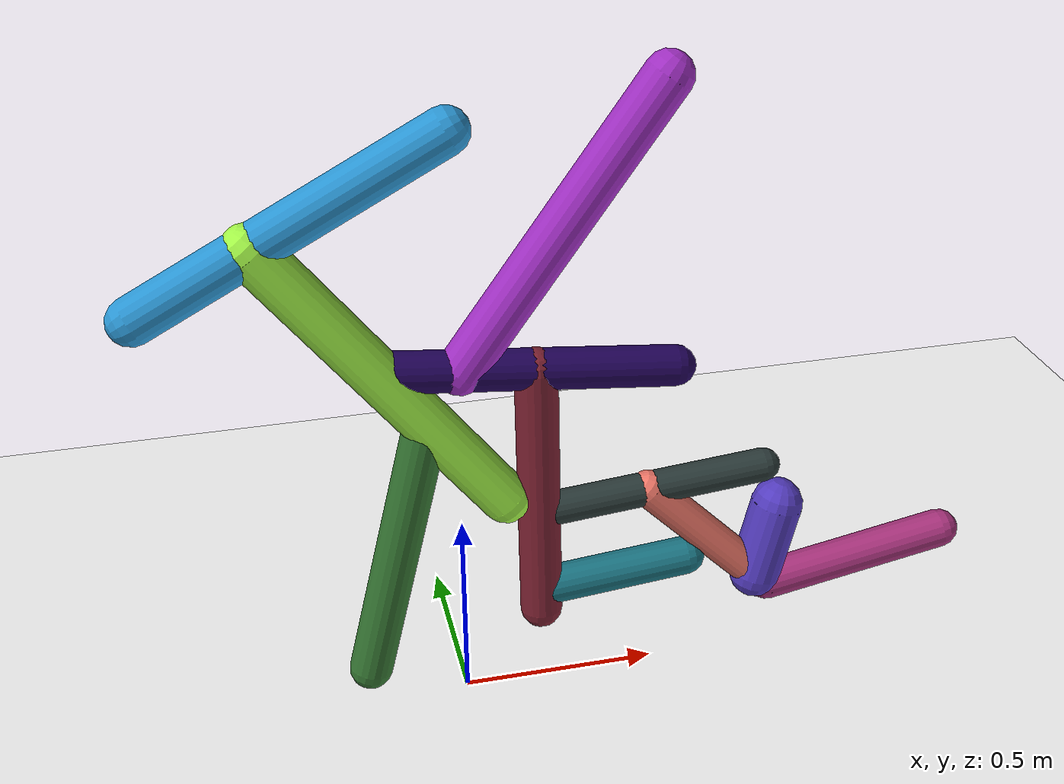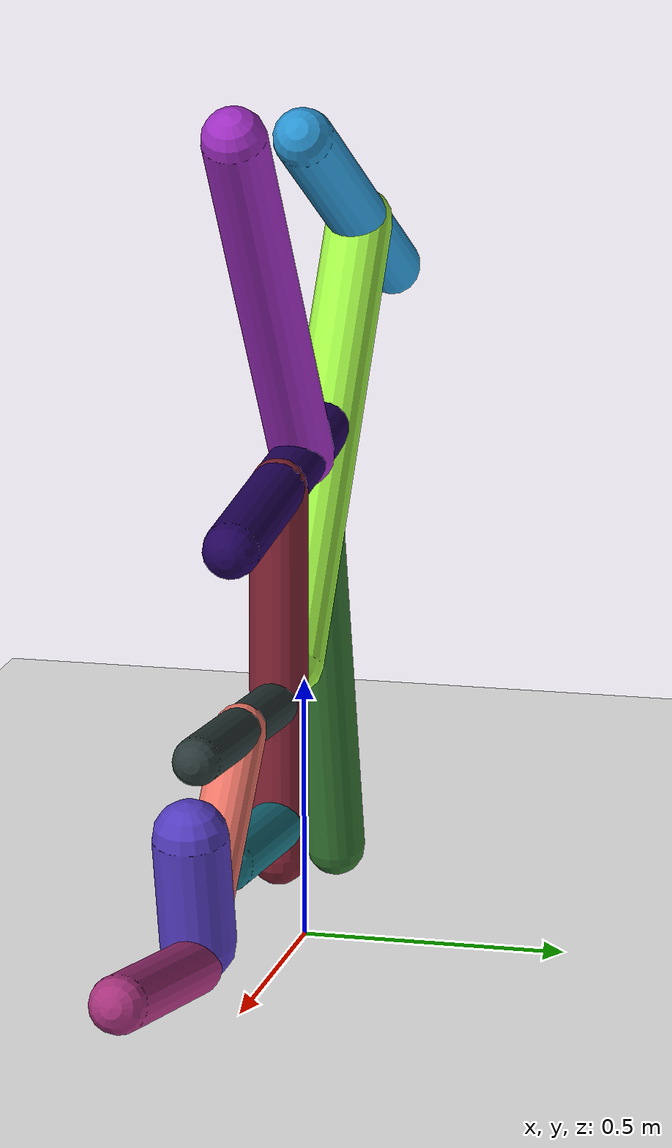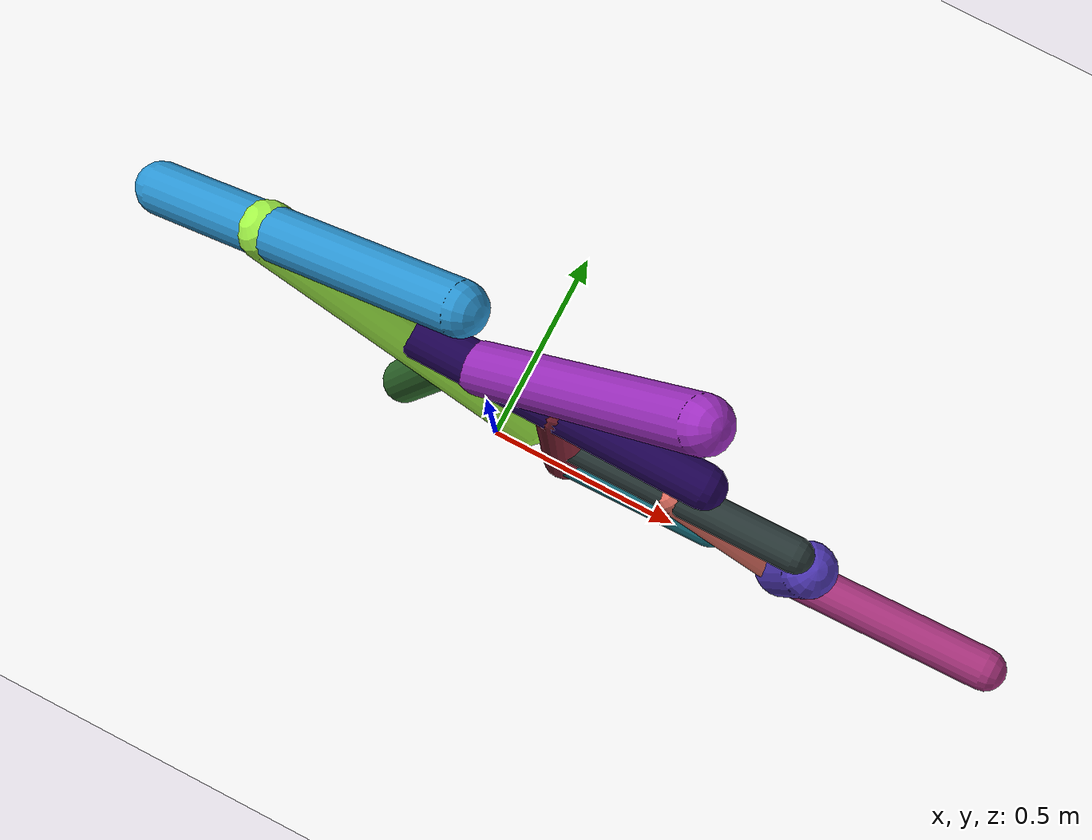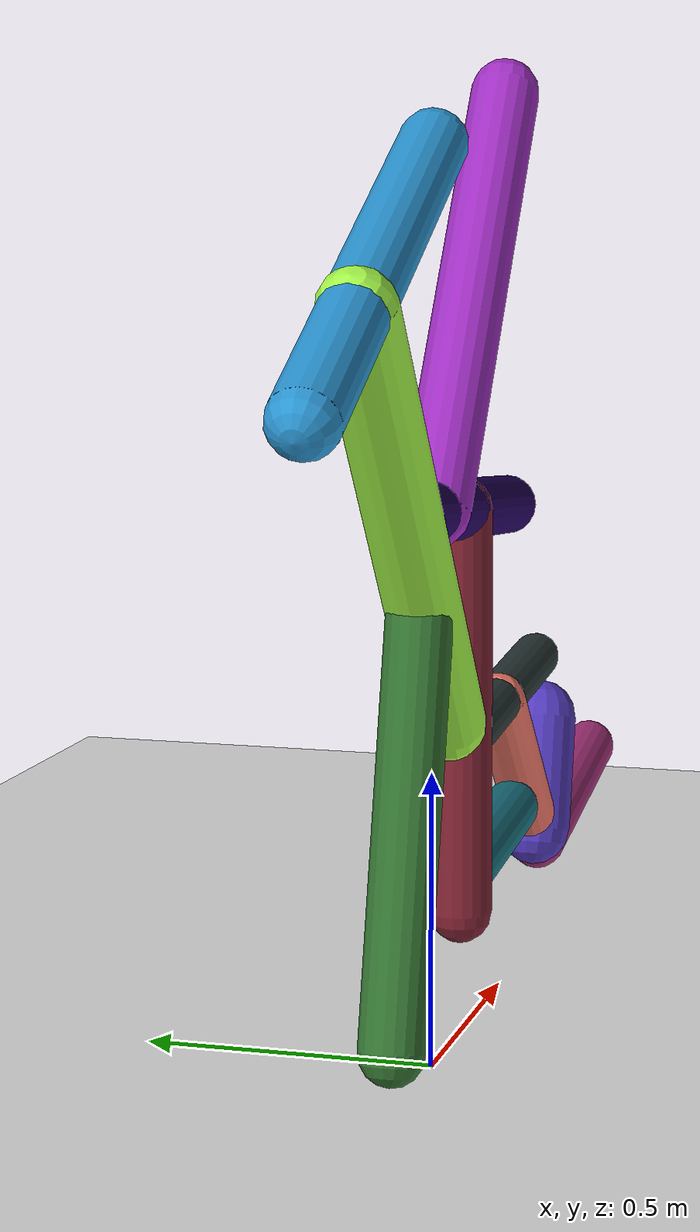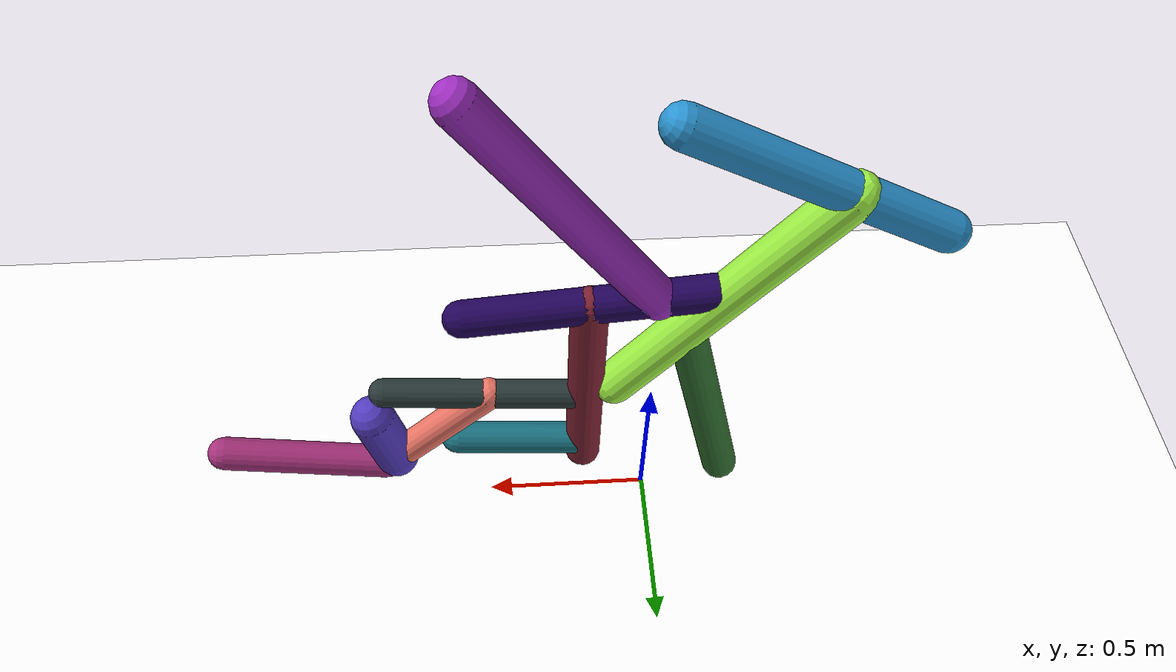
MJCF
<mujoco model="morphology">
  <option timestep="0.01"/>
  <default>
    <default class="/"/>
    <default class="0/"/>
    <default class="0/1/"/>
    <default class="0/1/2/"/>
    <default class="0/1/2/3/"/>
    <default class="0/1/2/4/"/>
    <default class="0/1/2/4/5/"/>
    <default class="0/1/2/4/6/"/>
    <default class="0/1/2/4/6/7/"/>
    <default class="0/1/2/4/6/7/8/"/>
    <default class="0/1/2/4/6/7/9/"/>
    <default class="0/1/10/"/>
  </default>
  <asset>
    <texture name="texplane" type="2d" builtin="checker" rgb1="0.10000000000000001 0.20000000000000001 0.29999999999999999" rgb2="0.20000000000000001 0.29999999999999999 0.40000000000000002" width="300" height="300"/>
    <material name="MatPlane" class="/" texture="texplane" texrepeat="20 20" specular="1" shininess="1" reflectance="0.5"/>
  </asset>
  <worldbody>
    <light name="//unnamed_light_0" class="/" directional="true" pos="0 0 1.5" dir="0 0 -1.3" cutoff="100" exponent="1" diffuse="1 1 1" specular="0.10000000000000001 0.10000000000000001 0.10000000000000001"/>
    <geom name="ground" class="/" type="plane" size="15 15 0.5" material="MatPlane" rgba="1 1 1 1"/>
    <site name="body" class="/" size="9.9999999999999995e-07 9.9999999999999995e-07 9.9999999999999995e-07" pos="0 0 1.5300401210784913"/>
    <body pos="0 0 1.5300401210784913" name="0/">
      <joint name="0/rootx/" class="/" type="slide" axis="1 0 0" limited="false" stiffness="0" armature="0" damping="0"/>
      <joint name="0/rootz/" class="/" type="slide" axis="0 0 1" limited="false" stiffness="0" armature="0" damping="0"/>
      <joint name="0/rooty/" class="/" type="hinge" axis="0 1 0" limited="false" stiffness="0" armature="0" damping="0"/>
      <geom name="0/geom" class="0/" type="capsule" contype="1" conaffinity="1" condim="3" size="0.057316337935166911" rgba="0.16601490198592128 0.58552024719703633 0.82671762298615925 1" friction="0.59999999999999998 0.10000000000000001 0.10000000000000001" fromto="0 0 0 -0.71993491554773659 0 -0.38075990136930665"/>
      <site name="0/end0" class="0/" size="0.0050000000000000001" pos="-0.71993491554773659 0 -0.38075990136930665"/>
      <site name="0/attach1" class="0/" size="9.9999999999999995e-07 9.9999999999999995e-07 9.9999999999999995e-07" pos="-0.45030785260041811 0 -0.23815926945494917"/>
      <body pos="-0.45030785260041811 0 -0.23815926945494917" name="0/1/">
        <joint name="0/1/joint/" class="0/" type="hinge" axis="0 1 0" limited="true" range="-53.354050288664567 53.354050288664567"/>
        <geom name="0/1/geom" class="0/1/" type="capsule" contype="1" conaffinity="1" condim="3" size="0.063629963072306339" rgba="0.63803736303354819 0.96229547335382071 0.27660666599015082 1" friction="0.59999999999999998 0.10000000000000001 0.10000000000000001" fromto="0 0 0 0.56477568606398076 0 -0.73017851075767837"/>
        <site name="0/1/end1" class="0/1/" size="0.0050000000000000001" pos="0.56477568606398076 0 -0.73017851075767837"/>
        <site name="0/1/attach2" class="0/1/" size="9.9999999999999995e-07 9.9999999999999995e-07 9.9999999999999995e-07" pos="0.26212219677319959 0 -0.33888851804201725"/>
        <body pos="0.26212219677319959 0 -0.33888851804201725" name="0/1/2/">
          <joint name="0/1/2/joint/" class="0/1/" type="hinge" axis="0 1 0" limited="true" range="-38.687447717589563 38.687447717589563"/>
          <geom name="0/1/2/geom" class="0/1/2/" type="capsule" contype="1" conaffinity="1" condim="3" size="0.052352955070050396" rgba="0.13450209288001902 0.015285924261667638 0.3579893641230486 1" friction="0.59999999999999998 0.10000000000000001 0.10000000000000001" fromto="0 0 0 0.73471594485408209 0 -0.071019676161072853"/>
          <site name="0/1/2/end2" class="0/1/2/" size="0.0050000000000000001" pos="0.73471594485408209 0 -0.071019676161072853"/>
          <site name="0/1/2/attach3" class="0/1/2/" size="9.9999999999999995e-07 9.9999999999999995e-07 9.9999999999999995e-07" pos="0.20009596071769198 0 -0.01934182922099446"/>
          <body pos="0.20009596071769198 0 -0.01934182922099446" name="0/1/2/3/">
            <geom name="0/1/2/3/geom" class="0/1/2/3/" type="capsule" contype="1" conaffinity="1" condim="3" size="0.06009136674693924" rgba="0.6255627824210106 0.18156598878047314 0.76179084760283589 1" friction="0.59999999999999998 0.10000000000000001 0.10000000000000001" fromto="0 0 0 0.49888099913349326 0 0.68441954268034655"/>
            <site name="0/1/2/3/end3" class="0/1/2/3/" size="0.0050000000000000001" pos="0.49888099913349326 0 0.68441954268034655"/>
          </body>
          <site name="0/1/2/attach4" class="0/1/2/" size="9.9999999999999995e-07 9.9999999999999995e-07 9.9999999999999995e-07" pos="0.38409748813114625 0 -0.037127925986107681"/>
          <body pos="0.38409748813114625 0 -0.037127925986107681" name="0/1/2/4/">
            <joint name="0/1/2/4/joint/" class="0/1/2/" type="hinge" axis="0 1 0" limited="true" range="-41.993866944089412 41.993866944089412"/>
            <geom name="0/1/2/4/geom" class="0/1/2/4/" type="capsule" contype="1" conaffinity="1" condim="3" size="0.054234689003071039" rgba="0.48698130971069542 0.13096967634288537 0.19568803162339932 1" friction="0.59999999999999998 0.10000000000000001 0.10000000000000001" fromto="0 0 0 0.0054414029631206784 0 -0.70143114697099818"/>
            <site name="0/1/2/4/end4" class="0/1/2/4/" size="0.0050000000000000001" pos="0.0054414029631206784 0 -0.70143114697099818"/>
            <site name="0/1/2/4/attach5" class="0/1/2/4/" size="9.9999999999999995e-07 9.9999999999999995e-07 9.9999999999999995e-07" pos="0.0049585490252664248 0 -0.63918823025557592"/>
            <body pos="0.0049585490252664248 0 -0.63918823025557592" name="0/1/2/4/5/">
              <joint name="0/1/2/4/5/joint/" class="0/1/2/4/" type="hinge" axis="0 1 0" limited="true" range="-48.205673054651399 48.205673054651399"/>
              <geom name="0/1/2/4/5/geom" class="0/1/2/4/5/" type="capsule" contype="1" conaffinity="1" condim="3" size="0.050323449743968934" rgba="0.10311630254525872 0.46037205433955841 0.51674564846563864 1" friction="0.59999999999999998 0.10000000000000001 0.10000000000000001" fromto="0 0 0 0.39200414246395709 0 0.034320207395018176"/>
              <site name="0/1/2/4/5/end5" class="0/1/2/4/5/" size="0.0050000000000000001" pos="0.39200414246395709 0 0.034320207395018176"/>
            </body>
            <site name="0/1/2/4/attach6" class="0/1/2/4/" size="9.9999999999999995e-07 9.9999999999999995e-07 9.9999999999999995e-07" pos="0.0031508715310701843 0 -0.40616720485065994"/>
            <body pos="0.0031508715310701843 0 -0.40616720485065994" name="0/1/2/4/6/">
              <joint name="0/1/2/4/6/joint/" class="0/1/2/4/" type="hinge" axis="0 1 0" limited="true" range="-66.855822067507674 66.855822067507674"/>
              <geom name="0/1/2/4/6/geom" class="0/1/2/4/6/" type="capsule" contype="1" conaffinity="1" condim="3" size="0.043991252906667708" rgba="0.16954998473962801 0.22797745471434328 0.22582746600540304 1" friction="0.59999999999999998 0.10000000000000001 0.10000000000000001" fromto="0 0 0 0.59631726809218 0 0.050726265491499167"/>
              <site name="0/1/2/4/6/end6" class="0/1/2/4/6/" size="0.0050000000000000001" pos="0.59631726809218 0 0.050726265491499167"/>
              <site name="0/1/2/4/6/attach7" class="0/1/2/4/6/" size="9.9999999999999995e-07 9.9999999999999995e-07 9.9999999999999995e-07" pos="0.28728665743089399 0 0.024438298262984694"/>
              <body pos="0.28728665743089399 0 0.024438298262984694" name="0/1/2/4/6/7/">
                <joint name="0/1/2/4/6/7/joint/" class="0/1/2/4/6/" type="hinge" axis="0 1 0" limited="true" range="-43.457042157904489 43.457042157904489"/>
                <geom name="0/1/2/4/6/7/geom" class="0/1/2/4/6/7/" type="capsule" contype="1" conaffinity="1" condim="3" size="0.048201922352985108" rgba="0.93085529250607535 0.46289732876939738 0.40552083509899572 1" friction="0.59999999999999998 0.10000000000000001 0.10000000000000001" fromto="0 0 0 0.33981723736013247 0 -0.34369979763189668"/>
                <site name="0/1/2/4/6/7/end7" class="0/1/2/4/6/7/" size="0.0050000000000000001" pos="0.33981723736013247 0 -0.34369979763189668"/>
                <site name="0/1/2/4/6/7/attach8" class="0/1/2/4/6/7/" size="9.9999999999999995e-07 9.9999999999999995e-07 9.9999999999999995e-07" pos="0.33826133518584023 0 -0.34212611859609032"/>
                <body pos="0.33826133518584023 0 -0.34212611859609032" name="0/1/2/4/6/7/8/">
                  <joint name="0/1/2/4/6/7/8/joint/" class="0/1/2/4/6/7/" type="hinge" axis="0 1 0" limited="true" range="-67.869402725375622 67.869402725375622"/>
                  <geom name="0/1/2/4/6/7/8/geom" class="0/1/2/4/6/7/8/" type="capsule" contype="1" conaffinity="1" condim="3" size="0.052015534049431489" rgba="0.65810719585288147 0.19637608348157953 0.48715971865796637 1" friction="0.59999999999999998 0.10000000000000001 0.10000000000000001" fromto="0 0 0 0.49785519892642105 0 0.088128880372468799"/>
                  <site name="0/1/2/4/6/7/8/end8" class="0/1/2/4/6/7/8/" size="0.0050000000000000001" pos="0.49785519892642105 0 0.088128880372468799"/>
                </body>
                <site name="0/1/2/4/6/7/attach9" class="0/1/2/4/6/7/" size="9.9999999999999995e-07 9.9999999999999995e-07 9.9999999999999995e-07" pos="0.30489652878866846 0 -0.30838010472163135"/>
                <body pos="0.30489652878866846 0 -0.30838010472163135" name="0/1/2/4/6/7/9/">
                  <geom name="0/1/2/4/6/7/9/geom" class="0/1/2/4/6/7/9/" type="capsule" contype="1" conaffinity="1" condim="3" size="0.068577681548171912" rgba="0.32907375852232057 0.23524678513526243 0.75252455978368848 1" friction="0.59999999999999998 0.10000000000000001 0.10000000000000001" fromto="0 0 0 0.050670680549597558 0 0.20978632870883207"/>
                  <site name="0/1/2/4/6/7/9/end9" class="0/1/2/4/6/7/9/" size="0.0050000000000000001" pos="0.050670680549597558 0 0.20978632870883207"/>
                </body>
              </body>
            </body>
          </body>
        </body>
        <site name="0/1/attach10" class="0/1/" size="9.9999999999999995e-07 9.9999999999999995e-07 9.9999999999999995e-07" pos="0.37521330464350283 0 -0.48510001184793022"/>
        <body pos="0.37521330464350283 0 -0.48510001184793022" name="0/1/10/">
          <geom name="0/1/10/geom" class="0/1/10/" type="capsule" contype="1" conaffinity="1" condim="3" size="0.055577154028898214" rgba="0.20381079279694159 0.45434426052772936 0.19373275795291656 1" friction="0.59999999999999998 0.10000000000000001 0.10000000000000001" fromto="0 0 0 -0.1768167404522456 0 -0.70678087526949918"/>
          <site name="0/1/10/end10" class="0/1/10/" size="0.0050000000000000001" pos="-0.1768167404522456 0 -0.70678087526949918"/>
        </body>
      </body>
      <camera name="0/side" class="0/" mode="trackcom" pos="0.40000000000000002 -4 0.20000000000000001" quat="0.70699999999999996 0.70699999999999996 0 0"/>
    </body>
  </worldbody>
  <actuator>
    <motor name="0/1/motor" class="0/1/" ctrllimited="true" ctrlrange="-1 1" gear="74" joint="0/1/joint/"/>
    <motor name="0/1/2/motor" class="0/1/2/" ctrllimited="true" ctrlrange="-1 1" gear="65" joint="0/1/2/joint/"/>
    <motor name="0/1/2/4/motor" class="0/1/2/4/" ctrllimited="true" ctrlrange="-1 1" gear="59" joint="0/1/2/4/joint/"/>
    <motor name="0/1/2/4/5/motor" class="0/1/2/4/5/" ctrllimited="true" ctrlrange="-1 1" gear="55" joint="0/1/2/4/5/joint/"/>
    <motor name="0/1/2/4/6/motor" class="0/1/2/4/6/" ctrllimited="true" ctrlrange="-1 1" gear="53" joint="0/1/2/4/6/joint/"/>
    <motor name="0/1/2/4/6/7/motor" class="0/1/2/4/6/7/" ctrllimited="true" ctrlrange="-1 1" gear="79" joint="0/1/2/4/6/7/joint/"/>
    <motor name="0/1/2/4/6/7/8/motor" class="0/1/2/4/6/7/8/" ctrllimited="true" ctrlrange="-1 1" gear="56" joint="0/1/2/4/6/7/8/joint/"/>
  </actuator>
  <sensor>
    <subtreelinvel name="velocity" body="0/"/>
  </sensor>
</mujoco>
